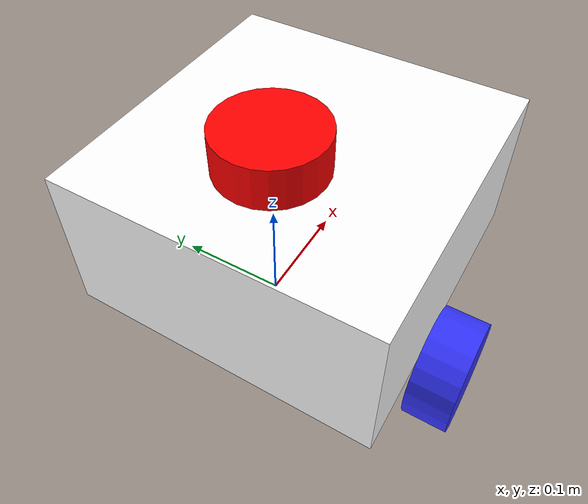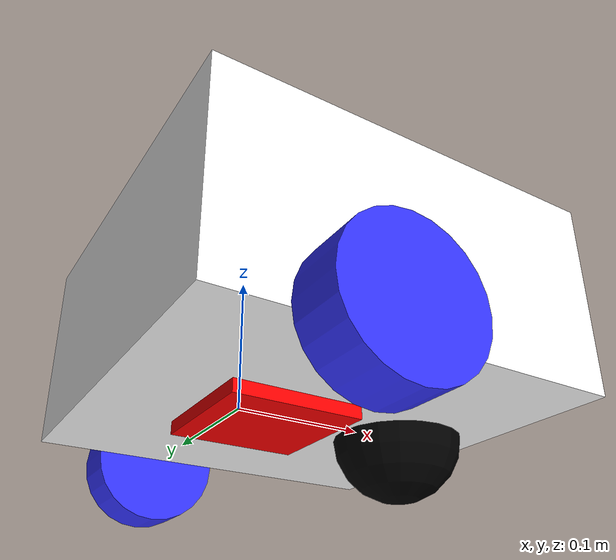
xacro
<?xml version="1.0"?>
<robot xmlns:xacro="http://www.ros.org/wiki/xacro"  name="robot">

    <!-- Example link -->
    <xacro:include filename="robot_core.xacro"/>
    <xacro:include filename="properties.xacro"/>
    <xacro:include filename="gazebo_control.xacro"/>
    <xacro:include filename="lidar.xacro"/>
    <xacro:include filename="imu.urdf.xacro"/>

        <!-- Example link -->

</robot>

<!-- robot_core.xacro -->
<robot xmlns:xacro="http://www.ros.org/wiki/xacro">

    <gazebo reference="chassis">
        <material>Gazebo/White</material>
    </gazebo>

    <gazebo reference="left_wheel">
        <material>Gazebo/Blue</material>
    </gazebo>

    <gazebo reference="right_wheel">
        <material>Gazebo/Blue</material>
    </gazebo>

    <gazebo reference="caster_wheel">
        <material>Gazebo/Black</material>
        <mu1 value = "0.001" />
        <mu2 value = "0.001" />
    </gazebo>

    <!-- Example link -->
    <xacro:include filename="inertial_macros.xacro"/>

    <!-- Example link -->
    <link name="base_link">
    </link>

    <joint name="base_link" type="fixed">
        <parent link="base_link"/>
        <child link="chassis"/>
        <origin xyz="-0.1 0 0"/>
    </joint>

    <!-- chassis link -->
    <link name="chassis">
        <visual>
            <origin xyz="0.15 0 0.075"/>
            <geometry>
                <box size="0.3 0.3 0.15"/>
            </geometry>
            <material name="white"/>
        </visual>
        <collision>
            <origin xyz="0.15 0 0.075"/>
            <geometry>
                <box size="0.3 0.3 0.15"/>
            </geometry>
        </collision>
        <xacro:inertial_box mass="0.5" x="0.3" y="0.3" z="0.15">
            <origin xyz="0.15 0 0.075" rpy="0 0 0"/>
        </xacro:inertial_box>
    </link>

    <!-- left wheel joint -->
    <joint name="left_wheel_joint" type="continuous">
        <parent link="base_link"/>
        <child link="left_wheel"/>
        <origin xyz="0 0.175 0" rpy="-${pi/2} 0 0"/>
        <axis xyz="0 0 1"/>
    </joint>

    <!-- left wheel link -->
    <link name="left_wheel">
        <visual>
            <geometry>
                <cylinder radius="0.05" length="0.04"/>
            </geometry>
            <material name="blue"/>
        </visual>
        <collision>
            <geometry>
                <cylinder radius="0.05" length="0.04"/>
            </geometry>
        </collision>
        <xacro:inertial_cylinder mass="0.1" length="0.04" radius="0.05">
            <origin xyz="0 0 0" rpy="0 0 0"/>
        </xacro:inertial_cylinder>
        <collision>
            <geometry>
                <sphere radius="0.05"/>
            </geometry>
        </collision>
    </link>

    <!-- right wheel joint -->
    <joint name="right_wheel_joint" type="continuous">
        <parent link="base_link"/>
        <child link="right_wheel"/>
        <origin xyz="0 -0.175 0" rpy="${pi/2} 0 0"/>
        <axis xyz="0 0 -1"/>
    </joint>

    <!-- right wheel link -->
    <link name="right_wheel">
        <visual>
            <geometry>
                <cylinder radius="0.05" length="0.04"/>
            </geometry>
            <material name="blue"/>
        </visual>
        <collision>
            <geometry>
                <cylinder radius="0.05" length="0.04"/>
            </geometry>
        </collision>
        <xacro:inertial_cylinder mass="0.1" length="0.04" radius="0.05">
            <origin xyz="0 0 0" rpy="0 0 0"/>
        </xacro:inertial_cylinder>
        <collision>
            <geometry>
                <sphere radius="0.05"/>
            </geometry>
        </collision>
    </link>

    <!-- caster wheel joint -->
    <joint name="caster_wheel_joint" type="fixed">
        <parent link="chassis"/>
        <child link="caster_wheel"/>
        <origin xyz="0.24 0 0"/>
    </joint>

    <!-- caster wheel link -->
    <link name="caster_wheel">
        <visual>
            <geometry>
                <sphere radius="0.05"/>
            </geometry>
            <material name="black"/>
        </visual>
        <collision>
            <geometry>
                <sphere radius="0.05"/>
            </geometry>
        </collision>
        <xacro:inertial_sphere mass="0.1" radius="0.05">
            <origin xyz="0 0 0" rpy="0 0 0"/>
        </xacro:inertial_sphere>

    </link>

</robot>

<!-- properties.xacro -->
<robot xmlns:xacro="http://www.ros.org/wiki/xacro">
    <!-- Color Definitions -->
    <material name="white">
        <color rgba= "1 1 1 1"/>
    </material>

    <material name="orange">
        <color rgba= "1 0.3 0.1 1"/>
    </material>

    <material name="blue">
        <color rgba= "0.2 0.2 1 1"/>
    </material>

    <material name="black">
        <color rgba= "0 0 0 1"/>
    </material>

    <material name="red">
        <color rgba= "1 0 0 1"/>
    </material>

    <material name="invisible">
        <color rgba="0.0 0.0 0.0 0.0"/>
    </material>

</robot>

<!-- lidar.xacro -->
<robot xmlns:xacro="http://www.ros.org/wiki/xacro">

    <!-- lidar joint -->
    <joint name="laser_joint" type="fixed">
        <parent link="chassis"/>
        <child link="laser_frame"/>
        <origin xyz="0.1 0 0.175" rpy="0 0 0"/>
    </joint>

    <!-- laser_frame -->
    <link name="laser_frame">
        <visual>
            <geometry>
                <cylinder radius="0.05" length="0.04"/>
            </geometry>
            <material name="red"/>
        </visual>
        <collision>
            <geometry>
                <cylinder radius="0.05" length="0.04"/>
            </geometry>
        </collision>
        <xacro:inertial_cylinder mass="0.1" length="0.04" radius="0.05">
            <origin xyz="0 0 0" rpy="0 0 0"/>
        </xacro:inertial_cylinder>
    </link>

    <gazebo reference="laser_frame">
        <material>Gazebo/Red</material>
        <sensor name="laser" type="ray">
            <pose>0 0 0 0 0 0</pose>
            <visualize>true</visualize>
            <update_rate>10</update_rate>
            <ray>
                <scan>
                    <horizontal>
												<!--samples> is the number of simulated lidar rays to generate per complete laser sweep cycle.-->
                        <samples>360</samples>
												<!--resolution>: this number is multiplied by samples to determine the number range data points.-->
                        <resolution>1</resolution>
							          <min_angle>-3.14</min_angle>
                        <max_angle>3.14</max_angle>
                    </horizontal>
                </scan>
                <range>
                    <min>0.1</min>
                    <max>12</max>
                    <resolution>0.01</resolution>
                </range>
            </ray>
            <plugin name="laser_controller" filename="libgazebo_ros_ray_sensor.so">
                <ros>
                    <remapping>~/out:=/alpha/scan</remapping>
                </ros>
                <output_type>sensor_msgs/LaserScan</output_type>
                <frame_name>laser_frame</frame_name>
            </plugin>
        </sensor>
    </gazebo>

</robot>

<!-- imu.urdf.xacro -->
<robot xmlns:xacro="http://www.ros.org/wiki/xacro">

    <!-- Imu_frame -->
    <link name="imu_frame">
        <visual>
            <origin xyz="0 0 -0.005"/>
            <geometry>
                <box size="0.1 0.1 0.01"/>
            </geometry>
            <material name="red"/>
        </visual>
        <xacro:inertial_box mass="0.005" x="0.1" y="0.1" z="0.01">
            <origin xyz="0 0 -0.005" rpy="0 0 0"/>
        </xacro:inertial_box>
        <collision>
            <origin xyz="0 0 0"/>
            <geometry>
                <box size="0.1 0.1 0.01"/>
            </geometry>
        </collision>
    </link>

    <!-- Imu joint -->
    <joint name="imu_joint" type="fixed">
        <parent link="chassis"/>
        <child link="imu_frame"/>
        <origin xyz="0.12 0 0" rpy="0 0 0"/>
    </joint>

    <gazebo reference="imu_frame">
        <material>Gazebo/Red</material>
        <gravity>true</gravity>
        <sensor name="imu_sensor" type="imu">
            <always_on>true</always_on>
            <update_rate>10</update_rate>
            <visualize>true</visualize>
            <!--Sensor will be published for the default topic-->
            <topic>__default_topic__</topic>
            <plugin filename="libgazebo_ros_imu_sensor.so" name="imu_plugin">
                <!--Sensor data will be published for the default topic-->
                <topicName>imu</topicName>
                <bodyName>imu_frame</bodyName>
                <updateRateHZ>10.0</updateRateHZ>
                <gaussianNoise>0.0</gaussianNoise>
                <!--Offsets from the reference link reference frame-->
                <xyzOffset>0 0 0</xyzOffset>
                <rpyOffset>0 0 0</rpyOffset>
                <frameName>imu_frame</frameName>
                <!--Sensor doesn't calibrate to the initial position-->
                <!--So world is tajen as reference-->
                <initialOrientationAsReference>false</initialOrientationAsReference>
                <ros>
                    <!--Output topic: scan-->
                    <remapping>~/out:=imu</remapping>
                </ros>

            </plugin>
            <pose>0 0 0 0 0 0</pose>
        </sensor>
  </gazebo>

</robot>
